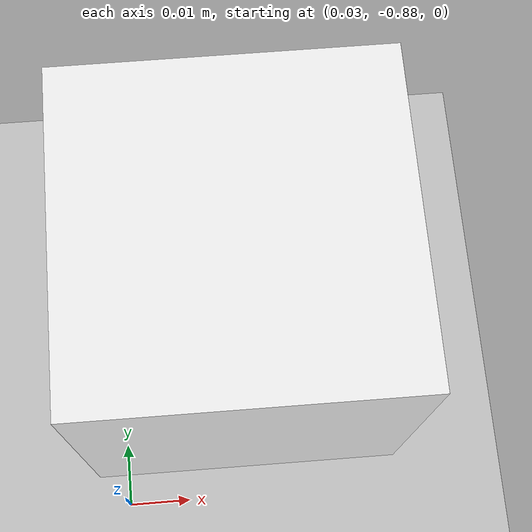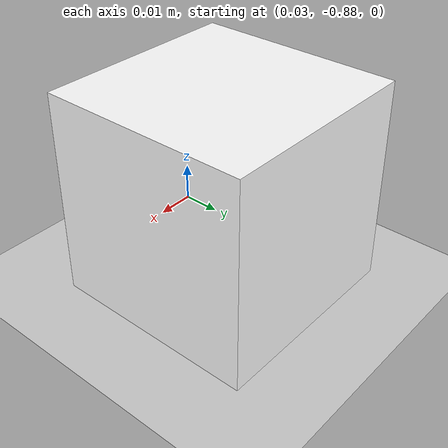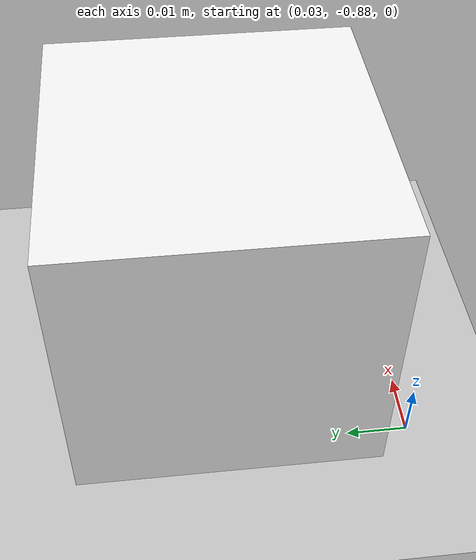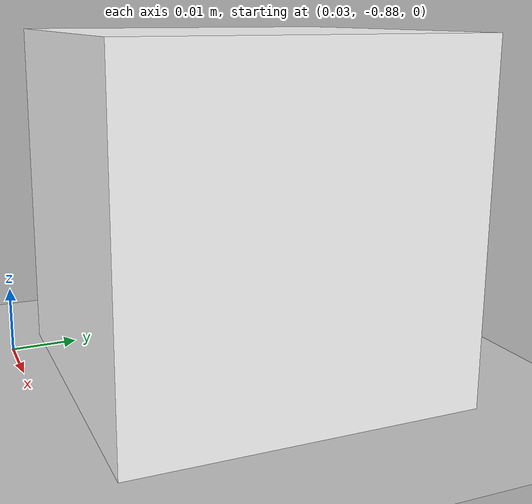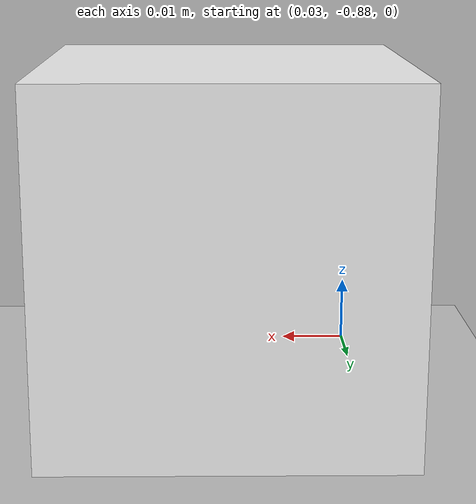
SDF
<?xml version="1.0" ?>
<sdf version="1.4">

  <world name="default">
    <include>
      <uri>model://ground_plane</uri>
    </include>

    <!-- Global light source -->
    <include>
      <uri>model://sun</uri>
    </include>

    <!-- Wood cube -->
    <include>
      <uri>model://wood_cube_5cm</uri>
      <name>cube</name>
      <pose>0.05 -0.85 0 0 0 0</pose>
    </include>

    <!-- Focus camera on tall pendulum -->
    <gui fullscreen='0'>
      <camera name='user_camera'>
        <pose>4.927360 -4.376610 3.740080 0.000000 0.275643 2.356190</pose>
        <view_controller>orbit</view_controller>
      </camera>
    </gui>

  </world>
</sdf>

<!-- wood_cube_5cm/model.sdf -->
<sdf version="1.5">
  <model name="wood_cube_5cm">
    <link name="link">
      <pose>0 0 0.025 0 0 0</pose>
      <inertial>
        <mass>0.0565</mass>
        <inertia>
          <ixx>2.3541666666666672e-05</ixx>
          <ixy>0</ixy>
          <ixz>0</ixz>
          <iyy>2.3541666666666672e-05</iyy>
          <iyz>0</iyz>
          <izz>2.3541666666666672e-05</izz>
        </inertia>
      </inertial>

      <collision name="collision">
        <geometry>
          <box>
            <size>0.05 0.05 0.05</size>
          </box>
        </geometry>
        <surface>
          <contact>
            <!-- Red Pine coefficients for longitudinal axis of the wood
                 according to:
                 http://www.fpl.fs.fed.us/documnts/fplgtr/fplgtr113/ch04.pdf -->
            <poissons_ratio>0.347</poissons_ratio>
            <elastic_modulus>8.8e+09</elastic_modulus>
            <ode>
              <kp>100000</kp>
              <kd>1</kd>
              <max_vel>1.0</max_vel>
              <min_depth>0.001</min_depth>
            </ode>
          </contact>
          <friction>
            <torsional>
              <coefficient>1.0</coefficient>
              <use_patch_radius>0</use_patch_radius>
              <surface_radius>0.05</surface_radius>
            </torsional>
          </friction>
        </surface>
      </collision>

      <visual name="visual">
        <geometry>
          <box>
            <size>0.05 0.05 0.05</size>
          </box>
        </geometry>
        <material><diffuse>1 1 1 1</diffuse><specular>0.1 0.1 0.1 1</specular></material>
      </visual>

    </link>
  </model>
</sdf>
